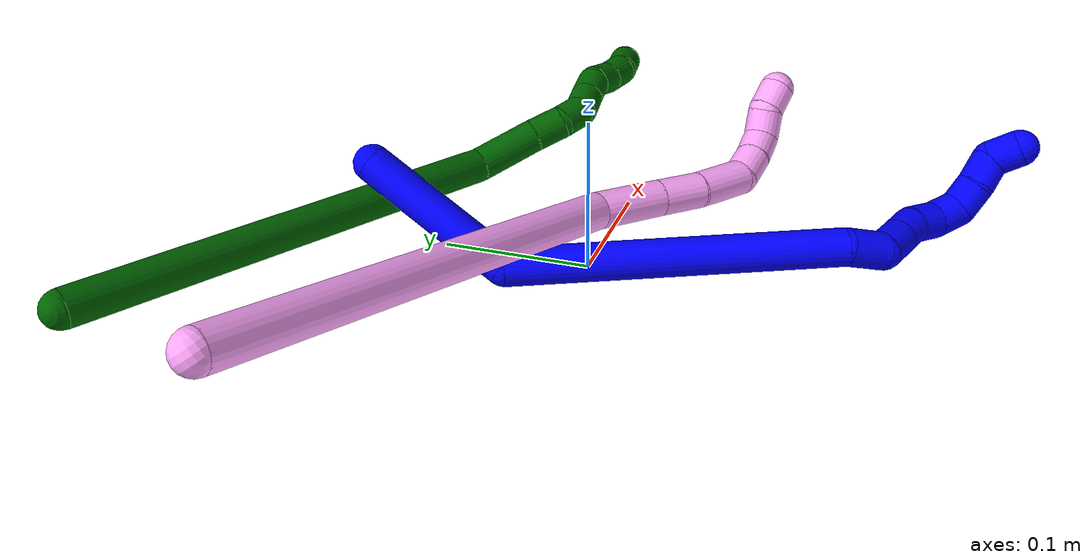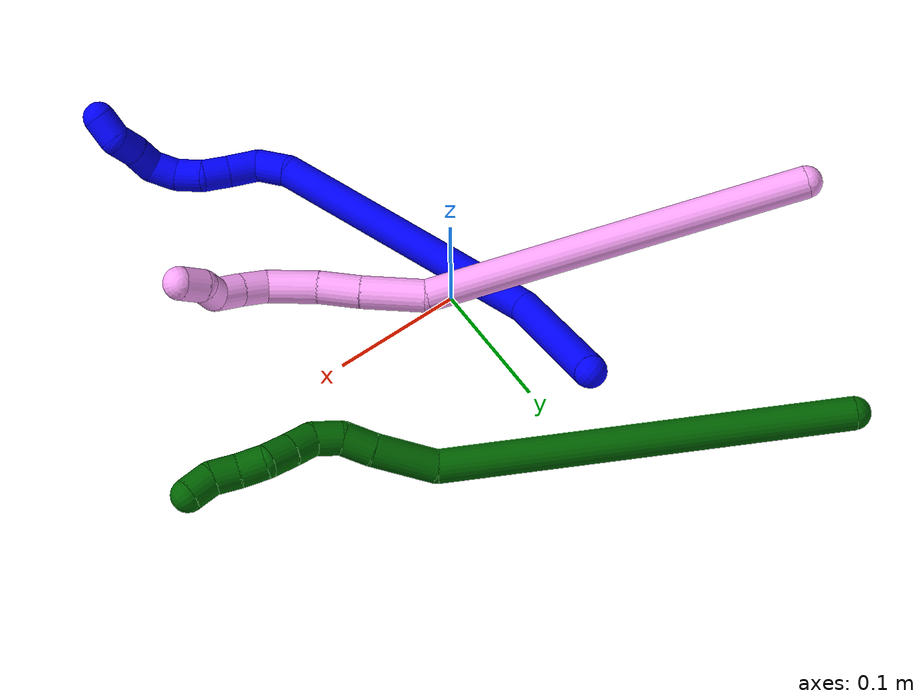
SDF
<sdf version="1.7">
 <world name="default">
  <model name="1">
   <static>0</static>
   <link name="1">
    <collision name="collision-cylinder-e_1_1_4">
     <pose>-0.000357 -0.046906 0.027877 1.03456 -0.006539 -0.00372</pose>
     <geometry><cylinder><radius>0.0125</radius><length>0.109132</length></cylinder></geometry>
     <surface>
      <friction><ode><mu>1.16</mu><mu2>1.16</mu2><slip1>0</slip1><slip2>0</slip2></ode></friction>
      <contact><ode><kp>1e+06</kp><kd>1</kd><max_vel>0</max_vel><min_depth>0.001</min_depth></ode></contact>
     </surface>
    </collision>
    <visual name="visual-cylinder-e_1_1_4">
     <pose>-0.000357 -0.046906 0.027877 1.03456 -0.006539 -0.00372</pose>
     <geometry><cylinder><radius>0.0125</radius><length>0.109132</length></cylinder></geometry>
     <material><ambient>0 0 1 1</ambient></material>
    </visual>
    <collision name="collision-cylinder-e_2_4_5">
     <pose>0.01714 -0.127623 0.157566 0.320632 0.164912 0.026726</pose>
     <geometry><cylinder><radius>0.0125</radius><length>0.217507</length></cylinder></geometry>
     <surface>
      <friction><ode><mu>1.16</mu><mu2>1.16</mu2><slip1>0</slip1><slip2>0</slip2></ode></friction>
      <contact><ode><kp>1e+06</kp><kd>1</kd><max_vel>0</max_vel><min_depth>0.001</min_depth></ode></contact>
     </surface>
    </collision>
    <visual name="visual-cylinder-e_2_4_5">
     <pose>0.01714 -0.127623 0.157566 0.320632 0.164912 0.026726</pose>
     <geometry><cylinder><radius>0.0125</radius><length>0.217507</length></cylinder></geometry>
     <material><ambient>0 0 1 1</ambient></material>
    </visual>
    <collision name="collision-cylinder-e_3_5_6">
     <pose>0.041081 -0.167195 0.270198 0.489226 0.46085 0.11698</pose>
     <geometry><cylinder><radius>0.0125</radius><length>0.027375</length></cylinder></geometry>
     <surface>
      <friction><ode><mu>1.16</mu><mu2>1.16</mu2><slip1>0</slip1><slip2>0</slip2></ode></friction>
      <contact><ode><kp>1e+06</kp><kd>1</kd><max_vel>0</max_vel><min_depth>0.001</min_depth></ode></contact>
     </surface>
    </collision>
    <visual name="visual-cylinder-e_3_5_6">
     <pose>0.041081 -0.167195 0.270198 0.489226 0.46085 0.11698</pose>
     <geometry><cylinder><radius>0.0125</radius><length>0.027375</length></cylinder></geometry>
     <material><ambient>0 0 1 1</ambient></material>
    </visual>
    <collision name="collision-cylinder-e_4_6_7">
     <pose>0.056261 -0.171053 0.288681 -0.243453 0.855915 -0.111488</pose>
     <geometry><cylinder><radius>0.0125</radius><length>0.024083</length></cylinder></geometry>
     <surface>
      <friction><ode><mu>1.16</mu><mu2>1.16</mu2><slip1>0</slip1><slip2>0</slip2></ode></friction>
      <contact><ode><kp>1e+06</kp><kd>1</kd><max_vel>0</max_vel><min_depth>0.001</min_depth></ode></contact>
     </surface>
    </collision>
    <visual name="visual-cylinder-e_4_6_7">
     <pose>0.056261 -0.171053 0.288681 -0.243453 0.855915 -0.111488</pose>
     <geometry><cylinder><radius>0.0125</radius><length>0.024083</length></cylinder></geometry>
     <material><ambient>0 0 1 1</ambient></material>
    </visual>
    <collision name="collision-cylinder-e_5_7_8">
     <pose>0.072636 -0.167251 0.302951 -0.279819 0.813886 -0.121247</pose>
     <geometry><cylinder><radius>0.0125</radius><length>0.020031</length></cylinder></geometry>
     <surface>
      <friction><ode><mu>1.16</mu><mu2>1.16</mu2><slip1>0</slip1><slip2>0</slip2></ode></friction>
      <contact><ode><kp>1e+06</kp><kd>1</kd><max_vel>0</max_vel><min_depth>0.001</min_depth></ode></contact>
     </surface>
    </collision>
    <visual name="visual-cylinder-e_5_7_8">
     <pose>0.072636 -0.167251 0.302951 -0.279819 0.813886 -0.121247</pose>
     <geometry><cylinder><radius>0.0125</radius><length>0.020031</length></cylinder></geometry>
     <material><ambient>0 0 1 1</ambient></material>
    </visual>
    <collision name="collision-cylinder-e_6_8_9">
     <pose>0.086161 -0.166774 0.317898 0.168954 0.636048 0.055738</pose>
     <geometry><cylinder><radius>0.0125</radius><length>0.021025</length></cylinder></geometry>
     <surface>
      <friction><ode><mu>1.16</mu><mu2>1.16</mu2><slip1>0</slip1><slip2>0</slip2></ode></friction>
      <contact><ode><kp>1e+06</kp><kd>1</kd><max_vel>0</max_vel><min_depth>0.001</min_depth></ode></contact>
     </surface>
    </collision>
    <visual name="visual-cylinder-e_6_8_9">
     <pose>0.086161 -0.166774 0.317898 0.168954 0.636048 0.055738</pose>
     <geometry><cylinder><radius>0.0125</radius><length>0.021025</length></cylinder></geometry>
     <material><ambient>0 0 1 1</ambient></material>
    </visual>
    <collision name="collision-cylinder-e_7_9_10">
     <pose>0.095779 -0.167617 0.335905 -0.05977 0.335104 -0.010112</pose>
     <geometry><cylinder><radius>0.0125</radius><length>0.020519</length></cylinder></geometry>
     <surface>
      <friction><ode><mu>1.16</mu><mu2>1.16</mu2><slip1>0</slip1><slip2>0</slip2></ode></friction>
      <contact><ode><kp>1e+06</kp><kd>1</kd><max_vel>0</max_vel><min_depth>0.001</min_depth></ode></contact>
     </surface>
    </collision>
    <visual name="visual-cylinder-e_7_9_10">
     <pose>0.095779 -0.167617 0.335905 -0.05977 0.335104 -0.010112</pose>
     <geometry><cylinder><radius>0.0125</radius><length>0.020519</length></cylinder></geometry>
     <material><ambient>0 0 1 1</ambient></material>
    </visual>
    <collision name="collision-cylinder-e_8_10_11">
     <pose>0.097907 -0.161779 0.354082 -0.553845 -0.123947 0.03527</pose>
     <geometry><cylinder><radius>0.0125</radius><length>0.020155</length></cylinder></geometry>
     <surface>
      <friction><ode><mu>1.16</mu><mu2>1.16</mu2><slip1>0</slip1><slip2>0</slip2></ode></friction>
      <contact><ode><kp>1e+06</kp><kd>1</kd><max_vel>0</max_vel><min_depth>0.001</min_depth></ode></contact>
     </surface>
    </collision>
    <visual name="visual-cylinder-e_8_10_11">
     <pose>0.097907 -0.161779 0.354082 -0.553845 -0.123947 0.03527</pose>
     <geometry><cylinder><radius>0.0125</radius><length>0.020155</length></cylinder></geometry>
     <material><ambient>0 0 1 1</ambient></material>
    </visual>
    <collision name="collision-cylinder-e_9_11_12">
     <pose>0.096984 -0.150346 0.370517 -0.661403 0.032037 -0.011</pose>
     <geometry><cylinder><radius>0.0125</radius><length>0.020109</length></cylinder></geometry>
     <surface>
      <friction><ode><mu>1.16</mu><mu2>1.16</mu2><slip1>0</slip1><slip2>0</slip2></ode></friction>
      <contact><ode><kp>1e+06</kp><kd>1</kd><max_vel>0</max_vel><min_depth>0.001</min_depth></ode></contact>
     </surface>
    </collision>
    <visual name="visual-cylinder-e_9_11_12">
     <pose>0.096984 -0.150346 0.370517 -0.661403 0.032037 -0.011</pose>
     <geometry><cylinder><radius>0.0125</radius><length>0.020109</length></cylinder></geometry>
     <material><ambient>0 0 1 1</ambient></material>
    </visual>
    <collision name="collision-cylinder-e_10_12_2">
     <pose>0.094641 -0.144357 0.388117 0.01888 -0.268816 -0.002553</pose>
     <geometry><cylinder><radius>0.0125</radius><length>0.020064</length></cylinder></geometry>
     <surface>
      <friction><ode><mu>1.16</mu><mu2>1.16</mu2><slip1>0</slip1><slip2>0</slip2></ode></friction>
      <contact><ode><kp>1e+06</kp><kd>1</kd><max_vel>0</max_vel><min_depth>0.001</min_depth></ode></contact>
     </surface>
    </collision>
    <visual name="visual-cylinder-e_10_12_2">
     <pose>0.094641 -0.144357 0.388117 0.01888 -0.268816 -0.002553</pose>
     <geometry><cylinder><radius>0.0125</radius><length>0.020064</length></cylinder></geometry>
     <material><ambient>0 0 1 1</ambient></material>
    </visual>
    <collision name="collision-sphere-2">
     <pose>0.091977 -0.144539 0.397787 0 -0 0</pose>
     <geometry><sphere><radius>0.0125</radius></sphere></geometry>
     <surface>
      <friction><ode><mu>1.16</mu><mu2>1.16</mu2><slip1>0</slip1><slip2>0</slip2></ode></friction>
      <contact><ode><kp>1e+06</kp><kd>1</kd><max_vel>0</max_vel><min_depth>0.001</min_depth></ode></contact>
     </surface>
    </collision>
    <visual name="visual-sphere-2">
     <pose>0.091977 -0.144539 0.397787 0 -0 0</pose>
     <geometry><sphere><radius>0.0125</radius></sphere></geometry>
     <material><ambient>0 0 1 1</ambient></material>
    </visual>
    <collision name="collision-sphere-12">
     <pose>0.097306 -0.144174 0.378447 0 -0 0</pose>
     <geometry><sphere><radius>0.0125</radius></sphere></geometry>
     <surface>
      <friction><ode><mu>1.16</mu><mu2>1.16</mu2><slip1>0</slip1><slip2>0</slip2></ode></friction>
      <contact><ode><kp>1e+06</kp><kd>1</kd><max_vel>0</max_vel><min_depth>0.001</min_depth></ode></contact>
     </surface>
    </collision>
    <visual name="visual-sphere-12">
     <pose>0.097306 -0.144174 0.378447 0 -0 0</pose>
     <geometry><sphere><radius>0.0125</radius></sphere></geometry>
     <material><ambient>0 0 1 1</ambient></material>
    </visual>
    <collision name="collision-sphere-11">
     <pose>0.096662 -0.156519 0.362587 0 -0 0</pose>
     <geometry><sphere><radius>0.0125</radius></sphere></geometry>
     <surface>
      <friction><ode><mu>1.16</mu><mu2>1.16</mu2><slip1>0</slip1><slip2>0</slip2></ode></friction>
      <contact><ode><kp>1e+06</kp><kd>1</kd><max_vel>0</max_vel><min_depth>0.001</min_depth></ode></contact>
     </surface>
    </collision>
    <visual name="visual-sphere-11">
     <pose>0.096662 -0.156519 0.362587 0 -0 0</pose>
     <geometry><sphere><radius>0.0125</radius></sphere></geometry>
     <material><ambient>0 0 1 1</ambient></material>
    </visual>
    <collision name="collision-sphere-10">
     <pose>0.099153 -0.167038 0.345577 0 -0 0</pose>
     <geometry><sphere><radius>0.0125</radius></sphere></geometry>
     <surface>
      <friction><ode><mu>1.16</mu><mu2>1.16</mu2><slip1>0</slip1><slip2>0</slip2></ode></friction>
      <contact><ode><kp>1e+06</kp><kd>1</kd><max_vel>0</max_vel><min_depth>0.001</min_depth></ode></contact>
     </surface>
    </collision>
    <visual name="visual-sphere-10">
     <pose>0.099153 -0.167038 0.345577 0 -0 0</pose>
     <geometry><sphere><radius>0.0125</radius></sphere></geometry>
     <material><ambient>0 0 1 1</ambient></material>
    </visual>
    <collision name="collision-sphere-9">
     <pose>0.092405 -0.168196 0.326234 0 -0 0</pose>
     <geometry><sphere><radius>0.0125</radius></sphere></geometry>
     <surface>
      <friction><ode><mu>1.16</mu><mu2>1.16</mu2><slip1>0</slip1><slip2>0</slip2></ode></friction>
      <contact><ode><kp>1e+06</kp><kd>1</kd><max_vel>0</max_vel><min_depth>0.001</min_depth></ode></contact>
     </surface>
    </collision>
    <visual name="visual-sphere-9">
     <pose>0.092405 -0.168196 0.326234 0 -0 0</pose>
     <geometry><sphere><radius>0.0125</radius></sphere></geometry>
     <material><ambient>0 0 1 1</ambient></material>
    </visual>
    <collision name="collision-sphere-4">
     <pose>-0.000714 -0.093812 0.055755 0 -0 0</pose>
     <geometry><sphere><radius>0.0125</radius></sphere></geometry>
     <surface>
      <friction><ode><mu>1.16</mu><mu2>1.16</mu2><slip1>0</slip1><slip2>0</slip2></ode></friction>
      <contact><ode><kp>1e+06</kp><kd>1</kd><max_vel>0</max_vel><min_depth>0.001</min_depth></ode></contact>
     </surface>
    </collision>
    <visual name="visual-sphere-4">
     <pose>-0.000714 -0.093812 0.055755 0 -0 0</pose>
     <geometry><sphere><radius>0.0125</radius></sphere></geometry>
     <material><ambient>0 0 1 1</ambient></material>
    </visual>
    <collision name="collision-sphere-1">
     <geometry><sphere><radius>0.0125</radius></sphere></geometry>
     <surface>
      <friction><ode><mu>1.16</mu><mu2>1.16</mu2><slip1>0</slip1><slip2>0</slip2></ode></friction>
      <contact><ode><kp>1e+06</kp><kd>1</kd><max_vel>0</max_vel><min_depth>0.001</min_depth></ode></contact>
     </surface>
    </collision>
    <visual name="visual-sphere-1">
     <geometry><sphere><radius>0.0125</radius></sphere></geometry>
     <material><ambient>0 0 1 1</ambient></material>
    </visual>
    <collision name="collision-sphere-8">
     <pose>0.079916 -0.165352 0.309561 0 -0 0</pose>
     <geometry><sphere><radius>0.0125</radius></sphere></geometry>
     <surface>
      <friction><ode><mu>1.16</mu><mu2>1.16</mu2><slip1>0</slip1><slip2>0</slip2></ode></friction>
      <contact><ode><kp>1e+06</kp><kd>1</kd><max_vel>0</max_vel><min_depth>0.001</min_depth></ode></contact>
     </surface>
    </collision>
    <visual name="visual-sphere-8">
     <pose>0.079916 -0.165352 0.309561 0 -0 0</pose>
     <geometry><sphere><radius>0.0125</radius></sphere></geometry>
     <material><ambient>0 0 1 1</ambient></material>
    </visual>
    <collision name="collision-sphere-5">
     <pose>0.034994 -0.161433 0.259377 0 -0 0</pose>
     <geometry><sphere><radius>0.0125</radius></sphere></geometry>
     <surface>
      <friction><ode><mu>1.16</mu><mu2>1.16</mu2><slip1>0</slip1><slip2>0</slip2></ode></friction>
      <contact><ode><kp>1e+06</kp><kd>1</kd><max_vel>0</max_vel><min_depth>0.001</min_depth></ode></contact>
     </surface>
    </collision>
    <visual name="visual-sphere-5">
     <pose>0.034994 -0.161433 0.259377 0 -0 0</pose>
     <geometry><sphere><radius>0.0125</radius></sphere></geometry>
     <material><ambient>0 0 1 1</ambient></material>
    </visual>
    <collision name="collision-sphere-6">
     <pose>0.047168 -0.172956 0.28102 0 -0 0</pose>
     <geometry><sphere><radius>0.0125</radius></sphere></geometry>
     <surface>
      <friction><ode><mu>1.16</mu><mu2>1.16</mu2><slip1>0</slip1><slip2>0</slip2></ode></friction>
      <contact><ode><kp>1e+06</kp><kd>1</kd><max_vel>0</max_vel><min_depth>0.001</min_depth></ode></contact>
     </surface>
    </collision>
    <visual name="visual-sphere-6">
     <pose>0.047168 -0.172956 0.28102 0 -0 0</pose>
     <geometry><sphere><radius>0.0125</radius></sphere></geometry>
     <material><ambient>0 0 1 1</ambient></material>
    </visual>
    <collision name="collision-sphere-7">
     <pose>0.065355 -0.16915 0.296342 0 -0 0</pose>
     <geometry><sphere><radius>0.0125</radius></sphere></geometry>
     <surface>
      <friction><ode><mu>1.16</mu><mu2>1.16</mu2><slip1>0</slip1><slip2>0</slip2></ode></friction>
      <contact><ode><kp>1e+06</kp><kd>1</kd><max_vel>0</max_vel><min_depth>0.001</min_depth></ode></contact>
     </surface>
    </collision>
    <visual name="visual-sphere-7">
     <pose>0.065355 -0.16915 0.296342 0 -0 0</pose>
     <geometry><sphere><radius>0.0125</radius></sphere></geometry>
     <material><ambient>0 0 1 1</ambient></material>
    </visual>
    <inertial>
     <pose>0.034446 -0.122101 0.187364 0 -0 0</pose>
     <mass>0.5</mass>
     <inertia>
      <ixx>0.001008</ixx>
      <ixy>0</ixy>
      <ixz>0</ixz>
      <iyy>0.000904</iyy>
      <iyz>0</iyz>
      <izz>0.00025</izz>
     </inertia>
    </inertial>
   </link>
   <pose>-0.023334 0.137793 0.064439 1.12181 0.487426 0.164812</pose>
  </model>
  <model name="4">
   <static>0</static>
   <link name="4">
    <collision name="collision-cylinder-e_1_1_4">
     <pose>0.141782 0.001404 -0.042407 -3.1085 1.28001 -3.09714</pose>
     <geometry><cylinder><radius>0.0125</radius><length>0.29599</length></cylinder></geometry>
     <surface>
      <friction><ode><mu>1.16</mu><mu2>1.16</mu2><slip1>0</slip1><slip2>0</slip2></ode></friction>
      <contact><ode><kp>1e+06</kp><kd>1</kd><max_vel>0</max_vel><min_depth>0.001</min_depth></ode></contact>
     </surface>
    </collision>
    <visual name="visual-cylinder-e_1_1_4">
     <pose>0.141782 0.001404 -0.042407 -3.1085 1.28001 -3.09714</pose>
     <geometry><cylinder><radius>0.0125</radius><length>0.29599</length></cylinder></geometry>
     <material><ambient>1 0.65098 0.996078 1</ambient></material>
    </visual>
    <collision name="collision-cylinder-e_2_4_5">
     <pose>0.304694 -0.005021 -0.094639 2.46876 1.0344 2.03918</pose>
     <geometry><cylinder><radius>0.0125</radius><length>0.049164</length></cylinder></geometry>
     <surface>
      <friction><ode><mu>1.16</mu><mu2>1.16</mu2><slip1>0</slip1><slip2>0</slip2></ode></friction>
      <contact><ode><kp>1e+06</kp><kd>1</kd><max_vel>0</max_vel><min_depth>0.001</min_depth></ode></contact>
     </surface>
    </collision>
    <visual name="visual-cylinder-e_2_4_5">
     <pose>0.304694 -0.005021 -0.094639 2.46876 1.0344 2.03918</pose>
     <geometry><cylinder><radius>0.0125</radius><length>0.049164</length></cylinder></geometry>
     <material><ambient>1 0.65098 0.996078 1</ambient></material>
    </visual>
    <collision name="collision-cylinder-e_3_5_6">
     <pose>0.33941 -0.018885 -0.111155 2.40774 0.985186 1.89874</pose>
     <geometry><cylinder><radius>0.0125</radius><length>0.032607</length></cylinder></geometry>
     <surface>
      <friction><ode><mu>1.16</mu><mu2>1.16</mu2><slip1>0</slip1><slip2>0</slip2></ode></friction>
      <contact><ode><kp>1e+06</kp><kd>1</kd><max_vel>0</max_vel><min_depth>0.001</min_depth></ode></contact>
     </surface>
    </collision>
    <visual name="visual-cylinder-e_3_5_6">
     <pose>0.33941 -0.018885 -0.111155 2.40774 0.985186 1.89874</pose>
     <geometry><cylinder><radius>0.0125</radius><length>0.032607</length></cylinder></geometry>
     <material><ambient>1 0.65098 0.996078 1</ambient></material>
    </visual>
    <collision name="collision-cylinder-e_4_6_7">
     <pose>0.370797 -0.030599 -0.124233 2.41473 1.12317 2.05416</pose>
     <geometry><cylinder><radius>0.0125</radius><length>0.039491</length></cylinder></geometry>
     <surface>
      <friction><ode><mu>1.16</mu><mu2>1.16</mu2><slip1>0</slip1><slip2>0</slip2></ode></friction>
      <contact><ode><kp>1e+06</kp><kd>1</kd><max_vel>0</max_vel><min_depth>0.001</min_depth></ode></contact>
     </surface>
    </collision>
    <visual name="visual-cylinder-e_4_6_7">
     <pose>0.370797 -0.030599 -0.124233 2.41473 1.12317 2.05416</pose>
     <geometry><cylinder><radius>0.0125</radius><length>0.039491</length></cylinder></geometry>
     <material><ambient>1 0.65098 0.996078 1</ambient></material>
    </visual>
    <collision name="collision-cylinder-e_5_7_8">
     <pose>0.399147 -0.038104 -0.128562 0.725845 1.31579 0.570859</pose>
     <geometry><cylinder><radius>0.0125</radius><length>0.021805</length></cylinder></geometry>
     <surface>
      <friction><ode><mu>1.16</mu><mu2>1.16</mu2><slip1>0</slip1><slip2>0</slip2></ode></friction>
      <contact><ode><kp>1e+06</kp><kd>1</kd><max_vel>0</max_vel><min_depth>0.001</min_depth></ode></contact>
     </surface>
    </collision>
    <visual name="visual-cylinder-e_5_7_8">
     <pose>0.399147 -0.038104 -0.128562 0.725845 1.31579 0.570859</pose>
     <geometry><cylinder><radius>0.0125</radius><length>0.021805</length></cylinder></geometry>
     <material><ambient>1 0.65098 0.996078 1</ambient></material>
    </visual>
    <collision name="collision-cylinder-e_6_8_9">
     <pose>0.419601 -0.041176 -0.123436 0.385785 1.24802 0.279422</pose>
     <geometry><cylinder><radius>0.0125</radius><length>0.020885</length></cylinder></geometry>
     <surface>
      <friction><ode><mu>1.16</mu><mu2>1.16</mu2><slip1>0</slip1><slip2>0</slip2></ode></friction>
      <contact><ode><kp>1e+06</kp><kd>1</kd><max_vel>0</max_vel><min_depth>0.001</min_depth></ode></contact>
     </surface>
    </collision>
    <visual name="visual-cylinder-e_6_8_9">
     <pose>0.419601 -0.041176 -0.123436 0.385785 1.24802 0.279422</pose>
     <geometry><cylinder><radius>0.0125</radius><length>0.020885</length></cylinder></geometry>
     <material><ambient>1 0.65098 0.996078 1</ambient></material>
    </visual>
    <collision name="collision-cylinder-e_7_9_10">
     <pose>0.434278 -0.047307 -0.11305 0.588697 0.497146 0.153592</pose>
     <geometry><cylinder><radius>0.0125</radius><length>0.020019</length></cylinder></geometry>
     <surface>
      <friction><ode><mu>1.16</mu><mu2>1.16</mu2><slip1>0</slip1><slip2>0</slip2></ode></friction>
      <contact><ode><kp>1e+06</kp><kd>1</kd><max_vel>0</max_vel><min_depth>0.001</min_depth></ode></contact>
     </surface>
    </collision>
    <visual name="visual-cylinder-e_7_9_10">
     <pose>0.434278 -0.047307 -0.11305 0.588697 0.497146 0.153592</pose>
     <geometry><cylinder><radius>0.0125</radius><length>0.020019</length></cylinder></geometry>
     <material><ambient>1 0.65098 0.996078 1</ambient></material>
    </visual>
    <collision name="collision-cylinder-e_8_10_2">
     <pose>0.447572 -0.055885 -0.101971 0.776004 1.01679 0.447884</pose>
     <geometry><cylinder><radius>0.0125</radius><length>0.020039</length></cylinder></geometry>
     <surface>
      <friction><ode><mu>1.16</mu><mu2>1.16</mu2><slip1>0</slip1><slip2>0</slip2></ode></friction>
      <contact><ode><kp>1e+06</kp><kd>1</kd><max_vel>0</max_vel><min_depth>0.001</min_depth></ode></contact>
     </surface>
    </collision>
    <visual name="visual-cylinder-e_8_10_2">
     <pose>0.447572 -0.055885 -0.101971 0.776004 1.01679 0.447884</pose>
     <geometry><cylinder><radius>0.0125</radius><length>0.020039</length></cylinder></geometry>
     <material><ambient>1 0.65098 0.996078 1</ambient></material>
    </visual>
    <collision name="collision-sphere-2">
     <pose>0.456093 -0.059577 -0.098209 0 -0 0</pose>
     <geometry><sphere><radius>0.0125</radius></sphere></geometry>
     <surface>
      <friction><ode><mu>1.16</mu><mu2>1.16</mu2><slip1>0</slip1><slip2>0</slip2></ode></friction>
      <contact><ode><kp>1e+06</kp><kd>1</kd><max_vel>0</max_vel><min_depth>0.001</min_depth></ode></contact>
     </surface>
    </collision>
    <visual name="visual-sphere-2">
     <pose>0.456093 -0.059577 -0.098209 0 -0 0</pose>
     <geometry><sphere><radius>0.0125</radius></sphere></geometry>
     <material><ambient>1 0.65098 0.996078 1</ambient></material>
    </visual>
    <collision name="collision-sphere-10">
     <pose>0.439052 -0.052193 -0.105733 0 -0 0</pose>
     <geometry><sphere><radius>0.0125</radius></sphere></geometry>
     <surface>
      <friction><ode><mu>1.16</mu><mu2>1.16</mu2><slip1>0</slip1><slip2>0</slip2></ode></friction>
      <contact><ode><kp>1e+06</kp><kd>1</kd><max_vel>0</max_vel><min_depth>0.001</min_depth></ode></contact>
     </surface>
    </collision>
    <visual name="visual-sphere-10">
     <pose>0.439052 -0.052193 -0.105733 0 -0 0</pose>
     <geometry><sphere><radius>0.0125</radius></sphere></geometry>
     <material><ambient>1 0.65098 0.996078 1</ambient></material>
    </visual>
    <collision name="collision-sphere-9">
     <pose>0.429504 -0.042422 -0.120367 0 -0 0</pose>
     <geometry><sphere><radius>0.0125</radius></sphere></geometry>
     <surface>
      <friction><ode><mu>1.16</mu><mu2>1.16</mu2><slip1>0</slip1><slip2>0</slip2></ode></friction>
      <contact><ode><kp>1e+06</kp><kd>1</kd><max_vel>0</max_vel><min_depth>0.001</min_depth></ode></contact>
     </surface>
    </collision>
    <visual name="visual-sphere-9">
     <pose>0.429504 -0.042422 -0.120367 0 -0 0</pose>
     <geometry><sphere><radius>0.0125</radius></sphere></geometry>
     <material><ambient>1 0.65098 0.996078 1</ambient></material>
    </visual>
    <collision name="collision-sphere-4">
     <pose>0.283564 0.002808 -0.084814 0 -0 0</pose>
     <geometry><sphere><radius>0.0125</radius></sphere></geometry>
     <surface>
      <friction><ode><mu>1.16</mu><mu2>1.16</mu2><slip1>0</slip1><slip2>0</slip2></ode></friction>
      <contact><ode><kp>1e+06</kp><kd>1</kd><max_vel>0</max_vel><min_depth>0.001</min_depth></ode></contact>
     </surface>
    </collision>
    <visual name="visual-sphere-4">
     <pose>0.283564 0.002808 -0.084814 0 -0 0</pose>
     <geometry><sphere><radius>0.0125</radius></sphere></geometry>
     <material><ambient>1 0.65098 0.996078 1</ambient></material>
    </visual>
    <collision name="collision-sphere-1">
     <geometry><sphere><radius>0.0125</radius></sphere></geometry>
     <surface>
      <friction><ode><mu>1.16</mu><mu2>1.16</mu2><slip1>0</slip1><slip2>0</slip2></ode></friction>
      <contact><ode><kp>1e+06</kp><kd>1</kd><max_vel>0</max_vel><min_depth>0.001</min_depth></ode></contact>
     </surface>
    </collision>
    <visual name="visual-sphere-1">
     <geometry><sphere><radius>0.0125</radius></sphere></geometry>
     <material><ambient>1 0.65098 0.996078 1</ambient></material>
    </visual>
    <collision name="collision-sphere-8">
     <pose>0.409697 -0.039929 -0.126505 0 -0 0</pose>
     <geometry><sphere><radius>0.0125</radius></sphere></geometry>
     <surface>
      <friction><ode><mu>1.16</mu><mu2>1.16</mu2><slip1>0</slip1><slip2>0</slip2></ode></friction>
      <contact><ode><kp>1e+06</kp><kd>1</kd><max_vel>0</max_vel><min_depth>0.001</min_depth></ode></contact>
     </surface>
    </collision>
    <visual name="visual-sphere-8">
     <pose>0.409697 -0.039929 -0.126505 0 -0 0</pose>
     <geometry><sphere><radius>0.0125</radius></sphere></geometry>
     <material><ambient>1 0.65098 0.996078 1</ambient></material>
    </visual>
    <collision name="collision-sphere-5">
     <pose>0.325823 -0.01285 -0.104463 0 -0 0</pose>
     <geometry><sphere><radius>0.0125</radius></sphere></geometry>
     <surface>
      <friction><ode><mu>1.16</mu><mu2>1.16</mu2><slip1>0</slip1><slip2>0</slip2></ode></friction>
      <contact><ode><kp>1e+06</kp><kd>1</kd><max_vel>0</max_vel><min_depth>0.001</min_depth></ode></contact>
     </surface>
    </collision>
    <visual name="visual-sphere-5">
     <pose>0.325823 -0.01285 -0.104463 0 -0 0</pose>
     <geometry><sphere><radius>0.0125</radius></sphere></geometry>
     <material><ambient>1 0.65098 0.996078 1</ambient></material>
    </visual>
    <collision name="collision-sphere-6">
     <pose>0.352997 -0.02492 -0.117846 0 -0 0</pose>
     <geometry><sphere><radius>0.0125</radius></sphere></geometry>
     <surface>
      <friction><ode><mu>1.16</mu><mu2>1.16</mu2><slip1>0</slip1><slip2>0</slip2></ode></friction>
      <contact><ode><kp>1e+06</kp><kd>1</kd><max_vel>0</max_vel><min_depth>0.001</min_depth></ode></contact>
     </surface>
    </collision>
    <visual name="visual-sphere-6">
     <pose>0.352997 -0.02492 -0.117846 0 -0 0</pose>
     <geometry><sphere><radius>0.0125</radius></sphere></geometry>
     <material><ambient>1 0.65098 0.996078 1</ambient></material>
    </visual>
    <collision name="collision-sphere-7">
     <pose>0.388597 -0.036278 -0.130619 0 -0 0</pose>
     <geometry><sphere><radius>0.0125</radius></sphere></geometry>
     <surface>
      <friction><ode><mu>1.16</mu><mu2>1.16</mu2><slip1>0</slip1><slip2>0</slip2></ode></friction>
      <contact><ode><kp>1e+06</kp><kd>1</kd><max_vel>0</max_vel><min_depth>0.001</min_depth></ode></contact>
     </surface>
    </collision>
    <visual name="visual-sphere-7">
     <pose>0.388597 -0.036278 -0.130619 0 -0 0</pose>
     <geometry><sphere><radius>0.0125</radius></sphere></geometry>
     <material><ambient>1 0.65098 0.996078 1</ambient></material>
    </visual>
    <inertial>
     <pose>0.235572 -0.010826 -0.070846 0 -0 0</pose>
     <mass>0.5</mass>
     <inertia>
      <ixx>-0.000605</ixx>
      <ixy>0</ixy>
      <ixz>0</ixz>
      <iyy>0.002176</iyy>
      <iyz>0</iyz>
      <izz>-0.002125</izz>
     </inertia>
    </inertial>
   </link>
   <pose>-0.250082 0.106521 0.070568 -0.622898 -0.101199 -0.206073</pose>
  </model>
  <model name="6">
   <static>0</static>
   <link name="6">
    <collision name="collision-cylinder-e_1_1_4">
     <pose>0.053325 -0.051243 -0.134024 2.7764 0.355817 1.54422</pose>
     <geometry><cylinder><radius>0.0125</radius><length>0.306149</length></cylinder></geometry>
     <surface>
      <friction><ode><mu>1.16</mu><mu2>1.16</mu2><slip1>0</slip1><slip2>0</slip2></ode></friction>
      <contact><ode><kp>1e+06</kp><kd>1</kd><max_vel>0</max_vel><min_depth>0.001</min_depth></ode></contact>
     </surface>
    </collision>
    <visual name="visual-cylinder-e_1_1_4">
     <pose>0.053325 -0.051243 -0.134024 2.7764 0.355817 1.54422</pose>
     <geometry><cylinder><radius>0.0125</radius><length>0.306149</length></cylinder></geometry>
     <material><ambient>0 0.392157 0.003922 1</ambient></material>
    </visual>
    <collision name="collision-cylinder-e_2_4_5">
     <pose>0.122924 -0.112226 -0.283113 2.56762 0.736796 1.83609</pose>
     <geometry><cylinder><radius>0.0125</radius><length>0.048442</length></cylinder></geometry>
     <surface>
      <friction><ode><mu>1.16</mu><mu2>1.16</mu2><slip1>0</slip1><slip2>0</slip2></ode></friction>
      <contact><ode><kp>1e+06</kp><kd>1</kd><max_vel>0</max_vel><min_depth>0.001</min_depth></ode></contact>
     </surface>
    </collision>
    <visual name="visual-cylinder-e_2_4_5">
     <pose>0.122924 -0.112226 -0.283113 2.56762 0.736796 1.83609</pose>
     <geometry><cylinder><radius>0.0125</radius><length>0.048442</length></cylinder></geometry>
     <material><ambient>0 0.392157 0.003922 1</ambient></material>
    </visual>
    <collision name="collision-cylinder-e_3_5_6">
     <pose>0.147479 -0.127651 -0.304653 2.42117 0.765459 1.63735</pose>
     <geometry><cylinder><radius>0.0125</radius><length>0.023902</length></cylinder></geometry>
     <surface>
      <friction><ode><mu>1.16</mu><mu2>1.16</mu2><slip1>0</slip1><slip2>0</slip2></ode></friction>
      <contact><ode><kp>1e+06</kp><kd>1</kd><max_vel>0</max_vel><min_depth>0.001</min_depth></ode></contact>
     </surface>
    </collision>
    <visual name="visual-cylinder-e_3_5_6">
     <pose>0.147479 -0.127651 -0.304653 2.42117 0.765459 1.63735</pose>
     <geometry><cylinder><radius>0.0125</radius><length>0.023902</length></cylinder></geometry>
     <material><ambient>0 0.392157 0.003922 1</ambient></material>
    </visual>
    <collision name="collision-cylinder-e_4_6_7">
     <pose>0.161252 -0.136072 -0.319802 2.83603 0.543346 2.13166</pose>
     <geometry><cylinder><radius>0.0125</radius><length>0.021249</length></cylinder></geometry>
     <surface>
      <friction><ode><mu>1.16</mu><mu2>1.16</mu2><slip1>0</slip1><slip2>0</slip2></ode></friction>
      <contact><ode><kp>1e+06</kp><kd>1</kd><max_vel>0</max_vel><min_depth>0.001</min_depth></ode></contact>
     </surface>
    </collision>
    <visual name="visual-cylinder-e_4_6_7">
     <pose>0.161252 -0.136072 -0.319802 2.83603 0.543346 2.13166</pose>
     <geometry><cylinder><radius>0.0125</radius><length>0.021249</length></cylinder></geometry>
     <material><ambient>0 0.392157 0.003922 1</ambient></material>
    </visual>
    <collision name="collision-cylinder-e_5_7_8">
     <pose>0.170893 -0.136228 -0.337232 -2.85511 0.426491 -1.96642</pose>
     <geometry><cylinder><radius>0.0125</radius><length>0.020054</length></cylinder></geometry>
     <surface>
      <friction><ode><mu>1.16</mu><mu2>1.16</mu2><slip1>0</slip1><slip2>0</slip2></ode></friction>
      <contact><ode><kp>1e+06</kp><kd>1</kd><max_vel>0</max_vel><min_depth>0.001</min_depth></ode></contact>
     </surface>
    </collision>
    <visual name="visual-cylinder-e_5_7_8">
     <pose>0.170893 -0.136228 -0.337232 -2.85511 0.426491 -1.96642</pose>
     <geometry><cylinder><radius>0.0125</radius><length>0.020054</length></cylinder></geometry>
     <material><ambient>0 0.392157 0.003922 1</ambient></material>
    </visual>
    <collision name="collision-cylinder-e_6_8_9">
     <pose>0.1794 -0.131407 -0.35477 -2.89168 0.448355 -2.13453</pose>
     <geometry><cylinder><radius>0.0125</radius><length>0.020113</length></cylinder></geometry>
     <surface>
      <friction><ode><mu>1.16</mu><mu2>1.16</mu2><slip1>0</slip1><slip2>0</slip2></ode></friction>
      <contact><ode><kp>1e+06</kp><kd>1</kd><max_vel>0</max_vel><min_depth>0.001</min_depth></ode></contact>
     </surface>
    </collision>
    <visual name="visual-cylinder-e_6_8_9">
     <pose>0.1794 -0.131407 -0.35477 -2.89168 0.448355 -2.13453</pose>
     <geometry><cylinder><radius>0.0125</radius><length>0.020113</length></cylinder></geometry>
     <material><ambient>0 0.392157 0.003922 1</ambient></material>
    </visual>
    <collision name="collision-cylinder-e_7_9_10">
     <pose>0.185834 -0.131267 -0.373121 2.92555 0.208616 1.53557</pose>
     <geometry><cylinder><radius>0.0125</radius><length>0.020031</length></cylinder></geometry>
     <surface>
      <friction><ode><mu>1.16</mu><mu2>1.16</mu2><slip1>0</slip1><slip2>0</slip2></ode></friction>
      <contact><ode><kp>1e+06</kp><kd>1</kd><max_vel>0</max_vel><min_depth>0.001</min_depth></ode></contact>
     </surface>
    </collision>
    <visual name="visual-cylinder-e_7_9_10">
     <pose>0.185834 -0.131267 -0.373121 2.92555 0.208616 1.53557</pose>
     <geometry><cylinder><radius>0.0125</radius><length>0.020031</length></cylinder></geometry>
     <material><ambient>0 0.392157 0.003922 1</ambient></material>
    </visual>
    <collision name="collision-cylinder-e_8_10_11">
     <pose>0.191619 -0.134647 -0.391913 3.00366 0.379313 2.45077</pose>
     <geometry><cylinder><radius>0.0125</radius><length>0.020044</length></cylinder></geometry>
     <surface>
      <friction><ode><mu>1.16</mu><mu2>1.16</mu2><slip1>0</slip1><slip2>0</slip2></ode></friction>
      <contact><ode><kp>1e+06</kp><kd>1</kd><max_vel>0</max_vel><min_depth>0.001</min_depth></ode></contact>
     </surface>
    </collision>
    <visual name="visual-cylinder-e_8_10_11">
     <pose>0.191619 -0.134647 -0.391913 3.00366 0.379313 2.45077</pose>
     <geometry><cylinder><radius>0.0125</radius><length>0.020044</length></cylinder></geometry>
     <material><ambient>0 0.392157 0.003922 1</ambient></material>
    </visual>
    <collision name="collision-cylinder-e_9_11_2">
     <pose>0.197331 -0.133572 -0.410653 -2.89904 0.201299 -1.38393</pose>
     <geometry><cylinder><radius>0.0125</radius><length>0.020016</length></cylinder></geometry>
     <surface>
      <friction><ode><mu>1.16</mu><mu2>1.16</mu2><slip1>0</slip1><slip2>0</slip2></ode></friction>
      <contact><ode><kp>1e+06</kp><kd>1</kd><max_vel>0</max_vel><min_depth>0.001</min_depth></ode></contact>
     </surface>
    </collision>
    <visual name="visual-cylinder-e_9_11_2">
     <pose>0.197331 -0.133572 -0.410653 -2.89904 0.201299 -1.38393</pose>
     <geometry><cylinder><radius>0.0125</radius><length>0.020016</length></cylinder></geometry>
     <material><ambient>0 0.392157 0.003922 1</ambient></material>
    </visual>
    <collision name="collision-sphere-2">
     <pose>0.199332 -0.131217 -0.420172 0 -0 0</pose>
     <geometry><sphere><radius>0.0125</radius></sphere></geometry>
     <surface>
      <friction><ode><mu>1.16</mu><mu2>1.16</mu2><slip1>0</slip1><slip2>0</slip2></ode></friction>
      <contact><ode><kp>1e+06</kp><kd>1</kd><max_vel>0</max_vel><min_depth>0.001</min_depth></ode></contact>
     </surface>
    </collision>
    <visual name="visual-sphere-2">
     <pose>0.199332 -0.131217 -0.420172 0 -0 0</pose>
     <geometry><sphere><radius>0.0125</radius></sphere></geometry>
     <material><ambient>0 0.392157 0.003922 1</ambient></material>
    </visual>
    <collision name="collision-sphere-11">
     <pose>0.19533 -0.135927 -0.401134 0 -0 0</pose>
     <geometry><sphere><radius>0.0125</radius></sphere></geometry>
     <surface>
      <friction><ode><mu>1.16</mu><mu2>1.16</mu2><slip1>0</slip1><slip2>0</slip2></ode></friction>
      <contact><ode><kp>1e+06</kp><kd>1</kd><max_vel>0</max_vel><min_depth>0.001</min_depth></ode></contact>
     </surface>
    </collision>
    <visual name="visual-sphere-11">
     <pose>0.19533 -0.135927 -0.401134 0 -0 0</pose>
     <geometry><sphere><radius>0.0125</radius></sphere></geometry>
     <material><ambient>0 0.392157 0.003922 1</ambient></material>
    </visual>
    <collision name="collision-sphere-10">
     <pose>0.187908 -0.133367 -0.382692 0 -0 0</pose>
     <geometry><sphere><radius>0.0125</radius></sphere></geometry>
     <surface>
      <friction><ode><mu>1.16</mu><mu2>1.16</mu2><slip1>0</slip1><slip2>0</slip2></ode></friction>
      <contact><ode><kp>1e+06</kp><kd>1</kd><max_vel>0</max_vel><min_depth>0.001</min_depth></ode></contact>
     </surface>
    </collision>
    <visual name="visual-sphere-10">
     <pose>0.187908 -0.133367 -0.382692 0 -0 0</pose>
     <geometry><sphere><radius>0.0125</radius></sphere></geometry>
     <material><ambient>0 0.392157 0.003922 1</ambient></material>
    </visual>
    <collision name="collision-sphere-9">
     <pose>0.183759 -0.129166 -0.36355 0 -0 0</pose>
     <geometry><sphere><radius>0.0125</radius></sphere></geometry>
     <surface>
      <friction><ode><mu>1.16</mu><mu2>1.16</mu2><slip1>0</slip1><slip2>0</slip2></ode></friction>
      <contact><ode><kp>1e+06</kp><kd>1</kd><max_vel>0</max_vel><min_depth>0.001</min_depth></ode></contact>
     </surface>
    </collision>
    <visual name="visual-sphere-9">
     <pose>0.183759 -0.129166 -0.36355 0 -0 0</pose>
     <geometry><sphere><radius>0.0125</radius></sphere></geometry>
     <material><ambient>0 0.392157 0.003922 1</ambient></material>
    </visual>
    <collision name="collision-sphere-4">
     <pose>0.106649 -0.102486 -0.268049 0 -0 0</pose>
     <geometry><sphere><radius>0.0125</radius></sphere></geometry>
     <surface>
      <friction><ode><mu>1.16</mu><mu2>1.16</mu2><slip1>0</slip1><slip2>0</slip2></ode></friction>
      <contact><ode><kp>1e+06</kp><kd>1</kd><max_vel>0</max_vel><min_depth>0.001</min_depth></ode></contact>
     </surface>
    </collision>
    <visual name="visual-sphere-4">
     <pose>0.106649 -0.102486 -0.268049 0 -0 0</pose>
     <geometry><sphere><radius>0.0125</radius></sphere></geometry>
     <material><ambient>0 0.392157 0.003922 1</ambient></material>
    </visual>
    <collision name="collision-sphere-1">
     <geometry><sphere><radius>0.0125</radius></sphere></geometry>
     <surface>
      <friction><ode><mu>1.16</mu><mu2>1.16</mu2><slip1>0</slip1><slip2>0</slip2></ode></friction>
      <contact><ode><kp>1e+06</kp><kd>1</kd><max_vel>0</max_vel><min_depth>0.001</min_depth></ode></contact>
     </surface>
    </collision>
    <visual name="visual-sphere-1">
     <geometry><sphere><radius>0.0125</radius></sphere></geometry>
     <material><ambient>0 0.392157 0.003922 1</ambient></material>
    </visual>
    <collision name="collision-sphere-8">
     <pose>0.175041 -0.133649 -0.345989 0 -0 0</pose>
     <geometry><sphere><radius>0.0125</radius></sphere></geometry>
     <surface>
      <friction><ode><mu>1.16</mu><mu2>1.16</mu2><slip1>0</slip1><slip2>0</slip2></ode></friction>
      <contact><ode><kp>1e+06</kp><kd>1</kd><max_vel>0</max_vel><min_depth>0.001</min_depth></ode></contact>
     </surface>
    </collision>
    <visual name="visual-sphere-8">
     <pose>0.175041 -0.133649 -0.345989 0 -0 0</pose>
     <geometry><sphere><radius>0.0125</radius></sphere></geometry>
     <material><ambient>0 0.392157 0.003922 1</ambient></material>
    </visual>
    <collision name="collision-sphere-5">
     <pose>0.139198 -0.121966 -0.298177 0 -0 0</pose>
     <geometry><sphere><radius>0.0125</radius></sphere></geometry>
     <surface>
      <friction><ode><mu>1.16</mu><mu2>1.16</mu2><slip1>0</slip1><slip2>0</slip2></ode></friction>
      <contact><ode><kp>1e+06</kp><kd>1</kd><max_vel>0</max_vel><min_depth>0.001</min_depth></ode></contact>
     </surface>
    </collision>
    <visual name="visual-sphere-5">
     <pose>0.139198 -0.121966 -0.298177 0 -0 0</pose>
     <geometry><sphere><radius>0.0125</radius></sphere></geometry>
     <material><ambient>0 0.392157 0.003922 1</ambient></material>
    </visual>
    <collision name="collision-sphere-6">
     <pose>0.155759 -0.133336 -0.311129 0 -0 0</pose>
     <geometry><sphere><radius>0.0125</radius></sphere></geometry>
     <surface>
      <friction><ode><mu>1.16</mu><mu2>1.16</mu2><slip1>0</slip1><slip2>0</slip2></ode></friction>
      <contact><ode><kp>1e+06</kp><kd>1</kd><max_vel>0</max_vel><min_depth>0.001</min_depth></ode></contact>
     </surface>
    </collision>
    <visual name="visual-sphere-6">
     <pose>0.155759 -0.133336 -0.311129 0 -0 0</pose>
     <geometry><sphere><radius>0.0125</radius></sphere></geometry>
     <material><ambient>0 0.392157 0.003922 1</ambient></material>
    </visual>
    <collision name="collision-sphere-7">
     <pose>0.166745 -0.138808 -0.328475 0 -0 0</pose>
     <geometry><sphere><radius>0.0125</radius></sphere></geometry>
     <surface>
      <friction><ode><mu>1.16</mu><mu2>1.16</mu2><slip1>0</slip1><slip2>0</slip2></ode></friction>
      <contact><ode><kp>1e+06</kp><kd>1</kd><max_vel>0</max_vel><min_depth>0.001</min_depth></ode></contact>
     </surface>
    </collision>
    <visual name="visual-sphere-7">
     <pose>0.166745 -0.138808 -0.328475 0 -0 0</pose>
     <geometry><sphere><radius>0.0125</radius></sphere></geometry>
     <material><ambient>0 0.392157 0.003922 1</ambient></material>
    </visual>
    <inertial>
     <pose>0.095559 -0.080887 -0.212541 0 -0 0</pose>
     <mass>0.5</mass>
     <inertia>
      <ixx>0.002332</ixx>
      <ixy>0</ixy>
      <ixz>0</ixz>
      <iyy>0.002501</iyy>
      <iyz>0</iyz>
      <izz>-7.2e-05</izz>
     </inertia>
    </inertial>
   </link>
   <pose>-0.174665 0.25983 0.020354 1.03392 -1.11218 -1.10871</pose>
  </model>
 </world>
</sdf>
